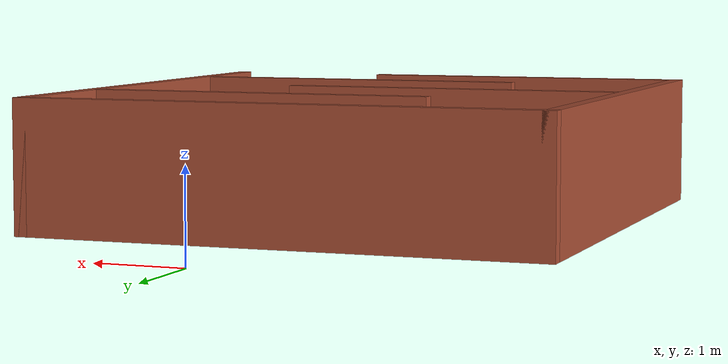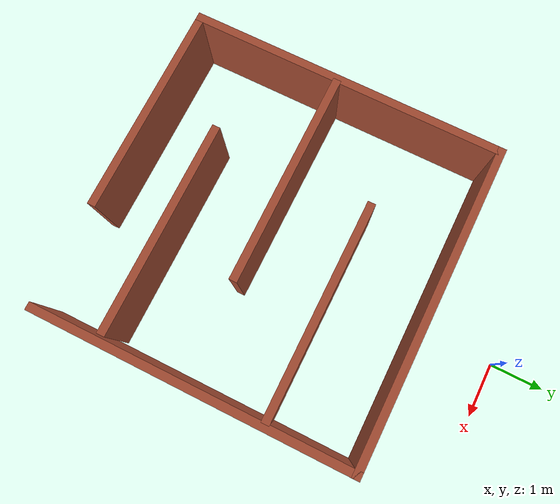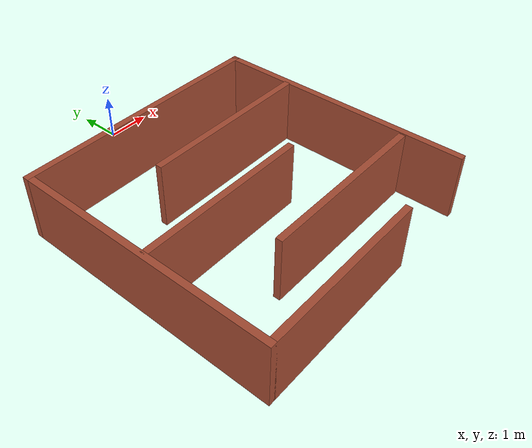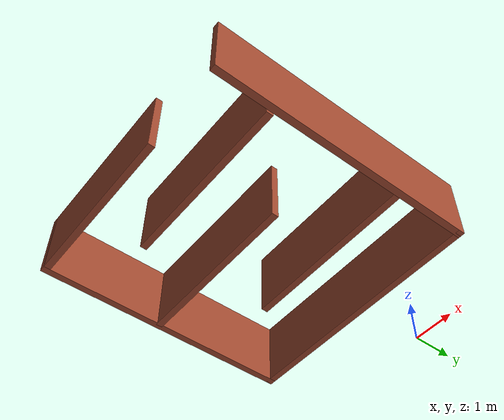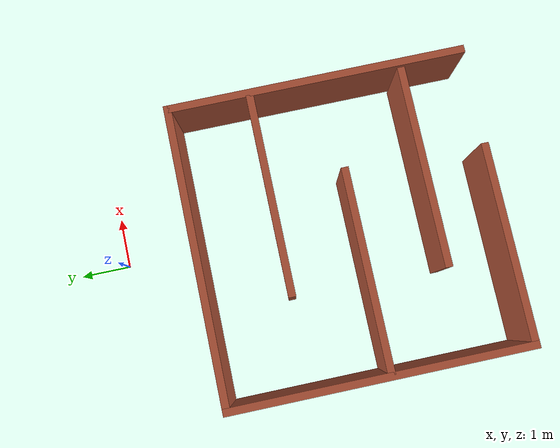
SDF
<?xml version='1.0'?>
<sdf version='1.6'>
  <model name='zig-zag'>
    <pose frame=''>-0.255 -4.485 0 0 -0 0</pose>
    <link name='Wall_0'>
      <collision name='Wall_0_Collision'>
        <geometry>
          <box>
            <size>6 0.15 1.5</size>
          </box>
        </geometry>
        <pose frame=''>0 0 0.75 0 -0 0</pose>
      </collision>
      <visual name='Wall_0_Visual'>
        <pose frame=''>0 0 0.75 0 -0 0</pose>
        <geometry>
          <box>
            <size>6 0.15 1.5</size>
          </box>
        </geometry>
        <material>
          <script>
            <uri>file://media/materials/scripts/gazebo.material</uri>
            <name>Gazebo/Bricks</name>
          </script>
          <ambient>1 1 1 1</ambient>
        </material>
        <meta>
          <layer>0</layer>
        </meta>
      </visual>
      <pose frame=''>0 2.925 0 0 -0 0</pose>
    </link>
    <link name='Wall_13'>
      <collision name='Wall_13_Collision'>
        <geometry>
          <box>
            <size>4 0.15 1.5</size>
          </box>
        </geometry>
        <pose frame=''>0 0 0.75 0 -0 0</pose>
      </collision>
      <visual name='Wall_13_Visual'>
        <pose frame=''>0 0 0.75 0 -0 0</pose>
        <geometry>
          <box>
            <size>4 0.15 1.5</size>
          </box>
        </geometry>
        <material>
          <script>
            <uri>file://media/materials/scripts/gazebo.material</uri>
            <name>Gazebo/Bricks</name>
          </script>
          <ambient>1 1 1 1</ambient>
        </material>
        <meta>
          <layer>0</layer>
        </meta>
      </visual>
      <pose frame=''>0.879 1.31 0 0 -0 3.14159</pose>
    </link>
    <link name='Wall_17'>
      <collision name='Wall_17_Collision'>
        <geometry>
          <box>
            <size>4 0.15 1.5</size>
          </box>
        </geometry>
        <pose frame=''>0 0 0.75 0 -0 0</pose>
      </collision>
      <visual name='Wall_17_Visual'>
        <pose frame=''>0 0 0.75 0 -0 0</pose>
        <geometry>
          <box>
            <size>4 0.15 1.5</size>
          </box>
        </geometry>
        <material>
          <script>
            <uri>file://media/materials/scripts/gazebo.material</uri>
            <name>Gazebo/Bricks</name>
          </script>
          <ambient>1 1 1 1</ambient>
        </material>
        <meta>
          <layer>0</layer>
        </meta>
      </visual>
      <pose frame=''>-0.905 -0.185 0 0 -0 0</pose>
    </link>
    <link name='Wall_21'>
      <collision name='Wall_21_Collision'>
        <geometry>
          <box>
            <size>4 0.15 1.5</size>
          </box>
        </geometry>
        <pose frame=''>0 0 0.75 0 -0 0</pose>
      </collision>
      <visual name='Wall_21_Visual'>
        <pose frame=''>0 0 0.75 0 -0 0</pose>
        <geometry>
          <box>
            <size>4 0.15 1.5</size>
          </box>
        </geometry>
        <material>
          <script>
            <uri>file://media/materials/scripts/gazebo.material</uri>
            <name>Gazebo/Bricks</name>
          </script>
          <ambient>1 1 1 1</ambient>
        </material>
        <meta>
          <layer>0</layer>
        </meta>
      </visual>
      <pose frame=''>0.813 -1.692 0 0 -0 3.14159</pose>
    </link>
    <link name='Wall_4'>
      <collision name='Wall_4_Collision'>
        <geometry>
          <box>
            <size>6 0.15 1.5</size>
          </box>
        </geometry>
        <pose frame=''>0 0 0.75 0 -0 0</pose>
      </collision>
      <visual name='Wall_4_Visual'>
        <pose frame=''>0 0 0.75 0 -0 0</pose>
        <geometry>
          <box>
            <size>6 0.15 1.5</size>
          </box>
        </geometry>
        <material>
          <script>
            <uri>file://media/materials/scripts/gazebo.material</uri>
            <name>Gazebo/Bricks</name>
          </script>
          <ambient>1 1 1 1</ambient>
        </material>
        <meta>
          <layer>0</layer>
        </meta>
      </visual>
      <pose frame=''>-2.925 0 0 0 -0 -1.5708</pose>
    </link>
    <link name='Wall_5'>
      <collision name='Wall_5_Collision'>
        <geometry>
          <box>
            <size>4 0.15 1.5</size>
          </box>
        </geometry>
        <pose frame=''>0 0 0.75 0 -0 0</pose>
      </collision>
      <visual name='Wall_5_Visual'>
        <pose frame=''>0 0 0.75 0 -0 0</pose>
        <geometry>
          <box>
            <size>4 0.15 1.5</size>
          </box>
        </geometry>
        <material>
          <script>
            <uri>file://media/materials/scripts/gazebo.material</uri>
            <name>Gazebo/Bricks</name>
          </script>
          <ambient>1 1 1 1</ambient>
        </material>
        <meta>
          <layer>0</layer>
        </meta>
      </visual>
      <pose frame=''>-1 -2.925 0 0 -0 0</pose>
    </link>
    <link name='Wall_8'>
      <collision name='Wall_8_Collision'>
        <geometry>
          <box>
            <size>6 0.15 1.5</size>
          </box>
        </geometry>
        <pose frame=''>0 0 0.75 0 -0 0</pose>
      </collision>
      <visual name='Wall_8_Visual'>
        <pose frame=''>0 0 0.75 0 -0 0</pose>
        <geometry>
          <box>
            <size>6 0.15 1.5</size>
          </box>
        </geometry>
        <material>
          <script>
            <uri>file://media/materials/scripts/gazebo.material</uri>
            <name>Gazebo/Bricks</name>
          </script>
          <ambient>1 1 1 1</ambient>
        </material>
        <meta>
          <layer>0</layer>
        </meta>
      </visual>
      <pose frame=''>2.925 0 0 0 -0 -1.5708</pose>
    </link>
    <static>1</static>
  </model>
</sdf>
